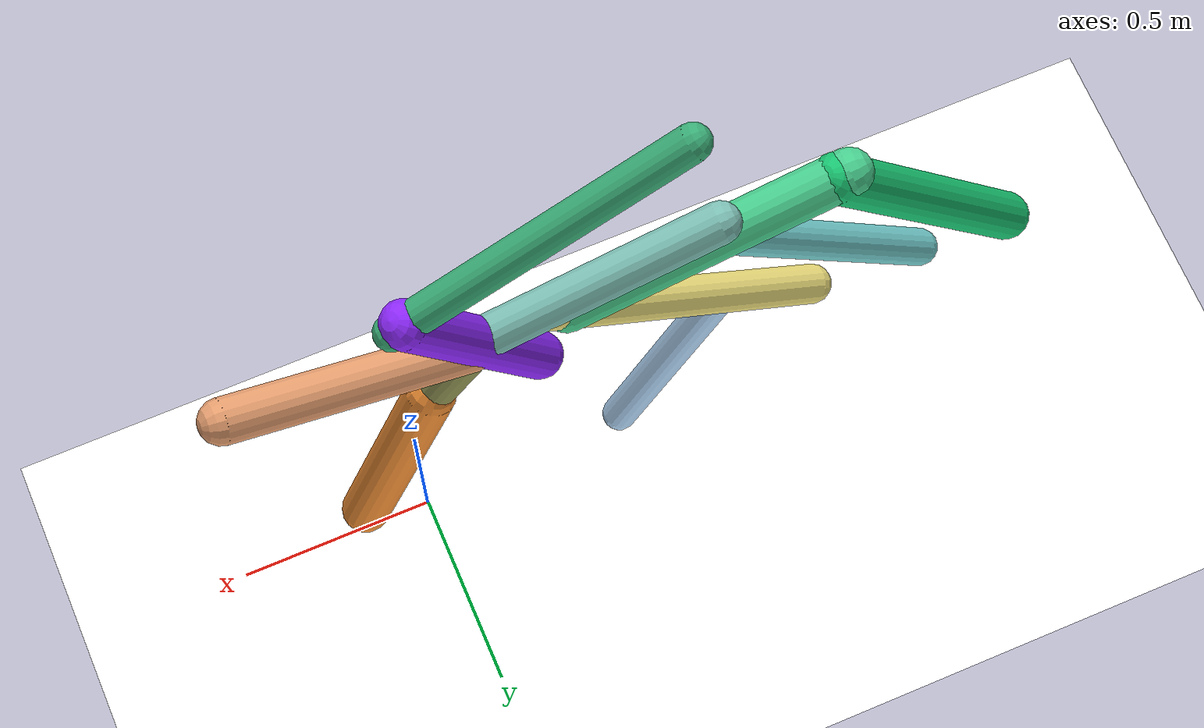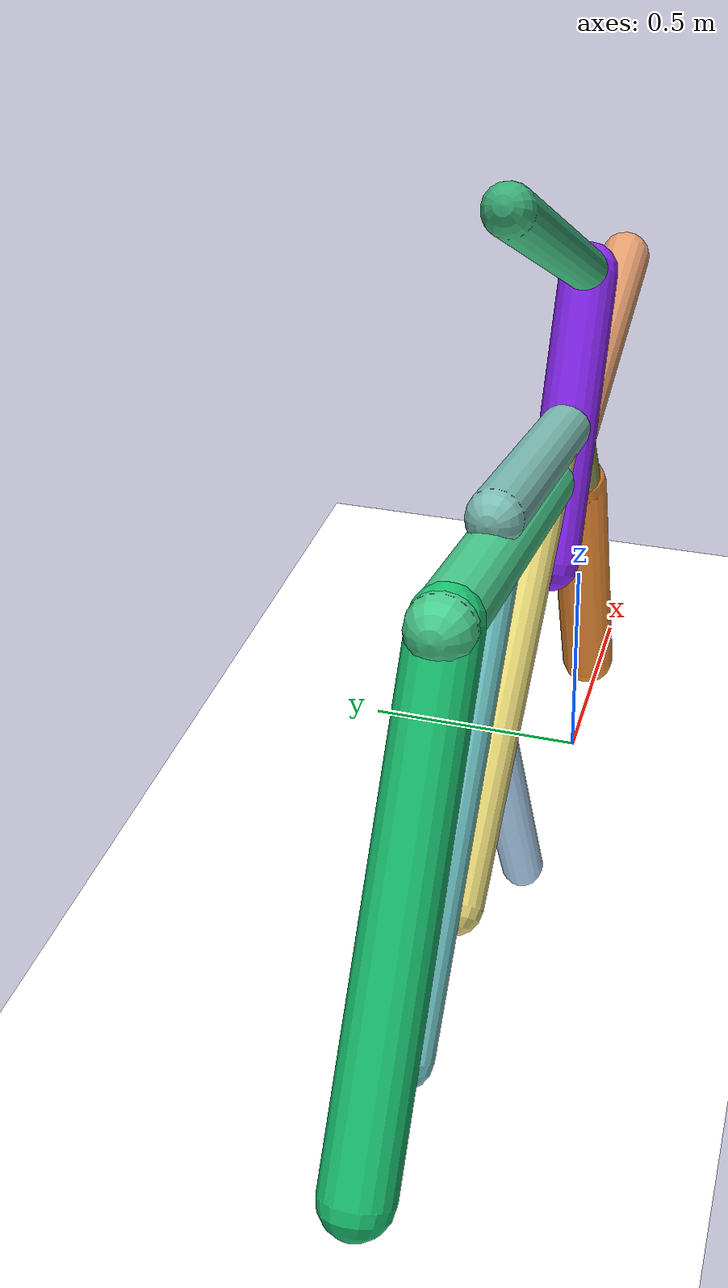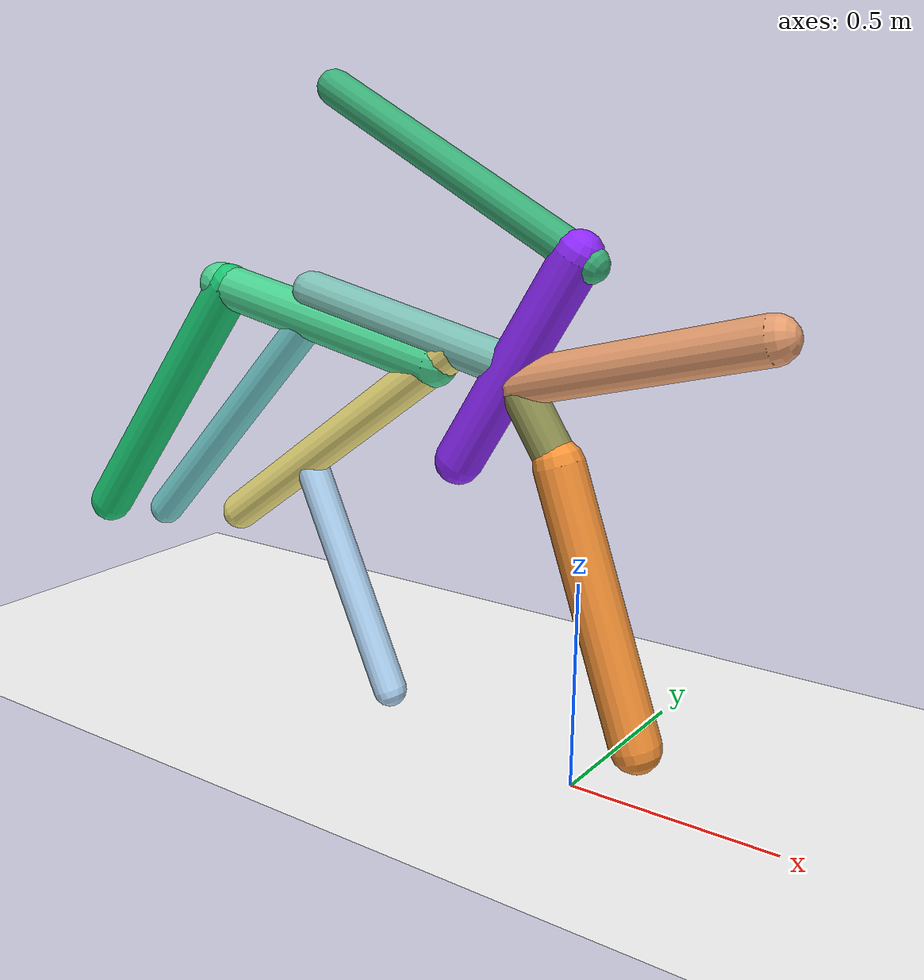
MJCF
<mujoco model="morphology">
  <option timestep="0.01"/>
  <default>
    <default class="/"/>
    <default class="0/"/>
    <default class="0/1/"/>
    <default class="0/1/2/"/>
    <default class="0/1/2/3/"/>
    <default class="0/1/2/4/"/>
    <default class="0/1/5/"/>
    <default class="0/1/5/6/"/>
    <default class="0/1/5/6/7/"/>
    <default class="0/1/5/6/8/"/>
    <default class="0/1/5/6/8/9/"/>
    <default class="0/1/5/6/8/10/"/>
  </default>
  <asset>
    <texture name="texplane" type="2d" builtin="checker" rgb1="0.10000000000000001 0.20000000000000001 0.29999999999999999" rgb2="0.20000000000000001 0.29999999999999999 0.40000000000000002" width="300" height="300"/>
    <material name="MatPlane" class="/" texture="texplane" texrepeat="20 20" specular="1" shininess="1" reflectance="0.5"/>
  </asset>
  <worldbody>
    <light name="//unnamed_light_0" class="/" directional="true" pos="0 0 1.5" dir="0 0 -1.3" cutoff="100" exponent="1" diffuse="1 1 1" specular="0.10000000000000001 0.10000000000000001 0.10000000000000001"/>
    <geom name="ground" class="/" type="plane" size="15 15 0.5" material="MatPlane" rgba="1 1 1 1"/>
    <site name="body" class="/" size="9.9999999999999995e-07 9.9999999999999995e-07 9.9999999999999995e-07" pos="0 0 1.2235306262969972"/>
    <body pos="0 0 1.2235306262969972" name="0/">
      <joint name="0/rootx/" class="/" type="slide" axis="1 0 0" limited="false" stiffness="0" armature="0" damping="0"/>
      <joint name="0/rootz/" class="/" type="slide" axis="0 0 1" limited="false" stiffness="0" armature="0" damping="0"/>
      <joint name="0/rooty/" class="/" type="hinge" axis="0 1 0" limited="false" stiffness="0" armature="0" damping="0"/>
      <geom name="0/geom" class="0/" type="capsule" contype="1" conaffinity="1" condim="3" size="0.04364837526171432" rgba="0.22848215738340749 0.68539483242840804 0.4710906619904055 1" friction="0.59999999999999998 0.10000000000000001 0.10000000000000001" fromto="0 0 0 -0.6988323139991619 0 0.38271035140483356"/>
      <site name="0/end0" class="0/" size="0.0050000000000000001" pos="-0.6988323139991619 0 0.38271035140483356"/>
      <site name="0/attach1" class="0/" size="9.9999999999999995e-07 9.9999999999999995e-07 9.9999999999999995e-07" pos="-0.029396788809563455 0 0.016098934107811165"/>
      <body pos="-0.029396788809563455 0 0.016098934107811165" name="0/1/">
        <joint name="0/1/joint/" class="0/" type="hinge" axis="0 1 0" limited="true" range="-69.618690342281482 69.618690342281482"/>
        <geom name="0/1/geom" class="0/1/" type="capsule" contype="1" conaffinity="1" condim="3" size="0.058487492351905576" rgba="0.56085353595943443 0.15983268894477143 0.99551313959926768 1" friction="0.59999999999999998 0.10000000000000001 0.10000000000000001" fromto="0 0 0 -0.30031259973422952 0 -0.49731670963232599"/>
        <site name="0/1/end1" class="0/1/" size="0.0050000000000000001" pos="-0.30031259973422952 0 -0.49731670963232599"/>
        <site name="0/1/attach2" class="0/1/" size="9.9999999999999995e-07 9.9999999999999995e-07 9.9999999999999995e-07" pos="-0.16115146824568191 0 -0.26686631866690236"/>
        <body pos="-0.16115146824568191 0 -0.26686631866690236" name="0/1/2/">
          <joint name="0/1/2/joint/" class="0/1/" type="hinge" axis="0 1 0" limited="true" range="-62.251224469130342 62.251224469130342"/>
          <geom name="0/1/2/geom" class="0/1/2/" type="capsule" contype="1" conaffinity="1" condim="3" size="0.049944208811478652" rgba="0.56790960574745453 0.57761100291721501 0.3241157976986635 1" friction="0.59999999999999998 0.10000000000000001 0.10000000000000001" fromto="0 0 0 0.134280674863266 0 -0.20685633764461531"/>
          <site name="0/1/2/end2" class="0/1/2/" size="0.0050000000000000001" pos="0.134280674863266 0 -0.20685633764461531"/>
          <site name="0/1/2/attach3" class="0/1/2/" size="9.9999999999999995e-07 9.9999999999999995e-07 9.9999999999999995e-07" pos="0.017211824856676126 0 -0.026514426276588222"/>
          <body pos="0.017211824856676126 0 -0.026514426276588222" name="0/1/2/3/">
            <geom name="0/1/2/3/geom" class="0/1/2/3/" type="capsule" contype="1" conaffinity="1" condim="3" size="0.054383059115860485" rgba="0.89975903153408454 0.61903665977704236 0.43361964017207144 1" friction="0.59999999999999998 0.10000000000000001 0.10000000000000001" fromto="0 0 0 0.58435734585161336 0 0.15230372901166289"/>
            <site name="0/1/2/3/end3" class="0/1/2/3/" size="0.0050000000000000001" pos="0.58435734585161336 0 0.15230372901166289"/>
          </body>
          <site name="0/1/2/attach4" class="0/1/2/" size="9.9999999999999995e-07 9.9999999999999995e-07 9.9999999999999995e-07" pos="0.13020611685099689 0 -0.2005795733313829"/>
          <body pos="0.13020611685099689 0 -0.2005795733313829" name="0/1/2/4/">
            <geom name="0/1/2/4/geom" class="0/1/2/4/" type="capsule" contype="1" conaffinity="1" condim="3" size="0.060981378473186271" rgba="0.97535201244086289 0.57979294322567188 0.21548542362668055 1" friction="0.59999999999999998 0.10000000000000001 0.10000000000000001" fromto="0 0 0 0.2188085338356317 0 -0.62494149778710373"/>
            <site name="0/1/2/4/end4" class="0/1/2/4/" size="0.0050000000000000001" pos="0.2188085338356317 0 -0.62494149778710373"/>
          </body>
        </body>
        <site name="0/1/attach5" class="0/1/" size="9.9999999999999995e-07 9.9999999999999995e-07 9.9999999999999995e-07" pos="-0.15670343122732799 0 -0.25950038351716775"/>
        <body pos="-0.15670343122732799 0 -0.25950038351716775" name="0/1/5/">
          <joint name="0/1/5/joint/" class="0/1/" type="hinge" axis="0 1 0" limited="true" range="-42.124169401266961 42.124169401266961"/>
          <geom name="0/1/5/geom" class="0/1/5/" type="capsule" contype="1" conaffinity="1" condim="3" size="0.050442107555298162" rgba="0.48846133388305901 0.74909761611442527 0.70523331637792463 1" friction="0.59999999999999998 0.10000000000000001 0.10000000000000001" fromto="0 0 0 -0.59282722837457813 0 0.13460847079621063"/>
          <site name="0/1/5/end5" class="0/1/5/" size="0.0050000000000000001" pos="-0.59282722837457813 0 0.13460847079621063"/>
          <site name="0/1/5/attach6" class="0/1/5/" size="9.9999999999999995e-07 9.9999999999999995e-07 9.9999999999999995e-07" pos="-0.15325404521467278 0 0.03479815312505484"/>
          <body pos="-0.15325404521467278 0 0.03479815312505484" name="0/1/5/6/">
            <joint name="0/1/5/6/joint/" class="0/1/5/" type="hinge" axis="0 1 0" limited="true" range="-68.570211544194635 68.570211544194635"/>
            <geom name="0/1/5/6/geom" class="0/1/5/6/" type="capsule" contype="1" conaffinity="1" condim="3" size="0.049553774186657865" rgba="0.92571128893324783 0.86766087063262787 0.48249855959399168 1" friction="0.59999999999999998 0.10000000000000001 0.10000000000000001" fromto="0 0 0 -0.70691308094706473 0 -0.5236116782924285"/>
            <site name="0/1/5/6/end6" class="0/1/5/6/" size="0.0050000000000000001" pos="-0.70691308094706473 0 -0.5236116782924285"/>
            <site name="0/1/5/6/attach7" class="0/1/5/6/" size="9.9999999999999995e-07 9.9999999999999995e-07 9.9999999999999995e-07" pos="-0.45748924893916471 0 -0.33886303690526337"/>
            <body pos="-0.45748924893916471 0 -0.33886303690526337" name="0/1/5/6/7/">
              <joint name="0/1/5/6/7/joint/" class="0/1/5/6/" type="hinge" axis="0 1 0" limited="true" range="-42.950118530511574 42.950118530511574"/>
              <geom name="0/1/5/6/7/geom" class="0/1/5/6/7/" type="capsule" contype="1" conaffinity="1" condim="3" size="0.043664896355983099" rgba="0.71081862174249066 0.86011965993440698 0.99016009690098061 1" friction="0.59999999999999998 0.10000000000000001 0.10000000000000001" fromto="0 0 0 0.26308047909914856 0 -0.57606431335877972"/>
              <site name="0/1/5/6/7/end7" class="0/1/5/6/7/" size="0.0050000000000000001" pos="0.26308047909914856 0 -0.57606431335877972"/>
            </body>
            <site name="0/1/5/6/attach8" class="0/1/5/6/" size="9.9999999999999995e-07 9.9999999999999995e-07 9.9999999999999995e-07" pos="-0.06379908684836412 0 -0.047256088249833718"/>
            <body pos="-0.06379908684836412 0 -0.047256088249833718" name="0/1/5/6/8/">
              <joint name="0/1/5/6/8/joint/" class="0/1/5/6/" type="hinge" axis="0 1 0" limited="true" range="-68.981480073673282 68.981480073673282"/>
              <geom name="0/1/5/6/8/geom" class="0/1/5/6/8/" type="capsule" contype="1" conaffinity="1" condim="3" size="0.057590209910792459" rgba="0.28323512858706701 0.81364748156005018 0.5611177888130725 1" friction="0.59999999999999998 0.10000000000000001 0.10000000000000001" fromto="0 0 0 -0.69296710156638397 0 0.14524698795556079"/>
              <site name="0/1/5/6/8/end8" class="0/1/5/6/8/" size="0.0050000000000000001" pos="-0.69296710156638397 0 0.14524698795556079"/>
              <site name="0/1/5/6/8/attach9" class="0/1/5/6/8/" size="9.9999999999999995e-07 9.9999999999999995e-07 9.9999999999999995e-07" pos="-0.66312130497749044 0 0.13899126232605793"/>
              <body pos="-0.66312130497749044 0 0.13899126232605793" name="0/1/5/6/8/9/">
                <joint name="0/1/5/6/8/9/joint/" class="0/1/5/6/8/" type="hinge" axis="0 1 0" limited="true" range="-45.763369295428184 45.763369295428184"/>
                <geom name="0/1/5/6/8/9/geom" class="0/1/5/6/8/9/" type="capsule" contype="1" conaffinity="1" condim="3" size="0.060877313035961556" rgba="0.09679171990978308 0.77625889027765616 0.447040797744791 1" friction="0.59999999999999998 0.10000000000000001 0.10000000000000001" fromto="0 0 0 -0.51582824827515306 0 -0.67745429978664606"/>
                <site name="0/1/5/6/8/9/end9" class="0/1/5/6/8/9/" size="0.0050000000000000001" pos="-0.51582824827515306 0 -0.67745429978664606"/>
              </body>
              <site name="0/1/5/6/8/attach10" class="0/1/5/6/8/" size="9.9999999999999995e-07 9.9999999999999995e-07 9.9999999999999995e-07" pos="-0.37949878931143699 0 0.079543539593254095"/>
              <body pos="-0.37949878931143699 0 0.079543539593254095" name="0/1/5/6/8/10/">
                <joint name="0/1/5/6/8/10/joint/" class="0/1/5/6/8/" type="hinge" axis="0 1 0" limited="true" range="-41.036563546495778 41.036563546495778"/>
                <geom name="0/1/5/6/8/10/geom" class="0/1/5/6/8/10/" type="capsule" contype="1" conaffinity="1" condim="3" size="0.046959875950229921" rgba="0.45251849233504238 0.80589355287494358 0.80935532989872117 1" friction="0.59999999999999998 0.10000000000000001 0.10000000000000001" fromto="0 0 0 -0.55942188692926242 0 -0.59767815594929652"/>
                <site name="0/1/5/6/8/10/end10" class="0/1/5/6/8/10/" size="0.0050000000000000001" pos="-0.55942188692926242 0 -0.59767815594929652"/>
              </body>
            </body>
          </body>
        </body>
      </body>
      <camera name="0/side" class="0/" mode="trackcom" pos="0.40000000000000002 -4 0.20000000000000001" quat="0.70699999999999996 0.70699999999999996 0 0"/>
    </body>
  </worldbody>
  <actuator>
    <motor name="0/1/motor" class="0/1/" ctrllimited="true" ctrlrange="-1 1" gear="57" joint="0/1/joint/"/>
    <motor name="0/1/2/motor" class="0/1/2/" ctrllimited="true" ctrlrange="-1 1" gear="70" joint="0/1/2/joint/"/>
    <motor name="0/1/5/motor" class="0/1/5/" ctrllimited="true" ctrlrange="-1 1" gear="59" joint="0/1/5/joint/"/>
    <motor name="0/1/5/6/motor" class="0/1/5/6/" ctrllimited="true" ctrlrange="-1 1" gear="50" joint="0/1/5/6/joint/"/>
    <motor name="0/1/5/6/7/motor" class="0/1/5/6/7/" ctrllimited="true" ctrlrange="-1 1" gear="84" joint="0/1/5/6/7/joint/"/>
    <motor name="0/1/5/6/8/motor" class="0/1/5/6/8/" ctrllimited="true" ctrlrange="-1 1" gear="55" joint="0/1/5/6/8/joint/"/>
    <motor name="0/1/5/6/8/9/motor" class="0/1/5/6/8/9/" ctrllimited="true" ctrlrange="-1 1" gear="74" joint="0/1/5/6/8/9/joint/"/>
    <motor name="0/1/5/6/8/10/motor" class="0/1/5/6/8/10/" ctrllimited="true" ctrlrange="-1 1" gear="53" joint="0/1/5/6/8/10/joint/"/>
  </actuator>
  <sensor>
    <subtreelinvel name="velocity" body="0/"/>
  </sensor>
</mujoco>
